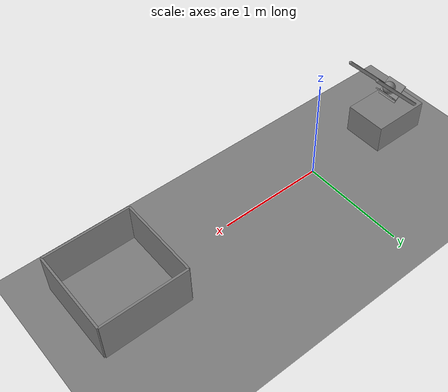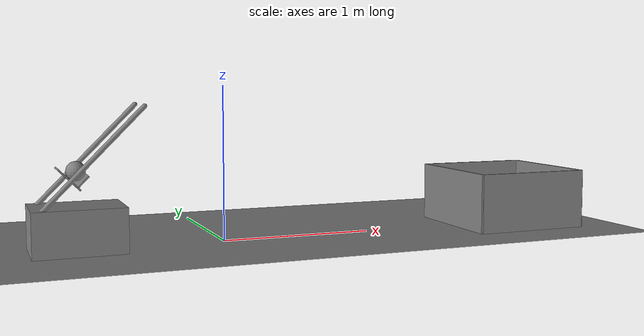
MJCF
<mujoco model="spring_catapult">
  <option timestep="0.002" gravity="0 0 -9.81" integrator="implicitfast"/>
  <worldbody>
    <geom name="floor" type="plane" pos="0 0 0" size="8 8 0.1"/>
    <geom name="catapult_base" type="box" pos="-0.920 0 0.140" size="0.28 0.20 0.14"/>
    <geom name="catapult_rail_left" type="capsule" fromto="-1.160 0.160 0.250 -0.530 0.160 0.880" size="0.016"/>
    <geom name="catapult_rail_right" type="capsule" fromto="-1.160 -0.160 0.250 -0.530 -0.160 0.880" size="0.016"/>
    <body name="catapult_carriage" pos="-0.920 0 0.490" quat="0.9238795325 0 0.3826834324 0">
      <joint name="catapult_slide" type="slide" axis="0 0 1" limited="true" range="0 0.350" stiffness="25.5" springref="0.550" damping="0.01" solreflimit="0.004 1" solimplimit="0.99 0.999 0.001"/>
      <geom name="catapult_launch_plate" type="box" pos="0 0 -0.065" size="0.09 0.10 0.005" mass="0.08" friction="0.01 0.001 0.0001" solref="0.004 1"/>
      <geom name="catapult_support_shelf" type="box" pos="0.065 0 -0.015" size="0.005 0.10 0.045" mass="0.02" friction="0.01 0.001 0.0001" solref="0.004 1"/>
    </body>
    <body name="ball" pos="-0.920 0 0.490">
      <freejoint name="ball_free"/>
      <geom name="ball" type="sphere" size="0.06" mass="0.15" condim="6" friction="0.01 0.001 0.004" solref="0.01 1"/>
    </body>
    <body name="bucket" pos="2.080 0 0">
      <geom name="bucket_base" type="box" pos="0 0 0.01" size="0.4 0.4 0.01" friction="1 0.01 0.004" solref="0.01 1"/>
      <geom name="bucket_near" type="box" pos="-0.4 0 0.2" size="0.01 0.4 0.2" friction="1 0.01 0.004" solref="0.01 1"/>
      <geom name="bucket_far" type="box" pos="0.4 0 0.2" size="0.01 0.4 0.2" friction="1 0.01 0.004" solref="0.01 1"/>
      <geom name="bucket_left" type="box" pos="0 0.4 0.2" size="0.4 0.01 0.2" friction="1 0.01 0.004" solref="0.01 1"/>
      <geom name="bucket_right" type="box" pos="0 -0.4 0.2" size="0.4 0.01 0.2" friction="1 0.01 0.004" solref="0.01 1"/>
    </body>
  </worldbody>
  <keyframe>
    <key name="start" qpos="0 -0.920 0 0.490 1 0 0 0" qvel="0 0 0 0 0 0 0"/>
  </keyframe>
</mujoco>
